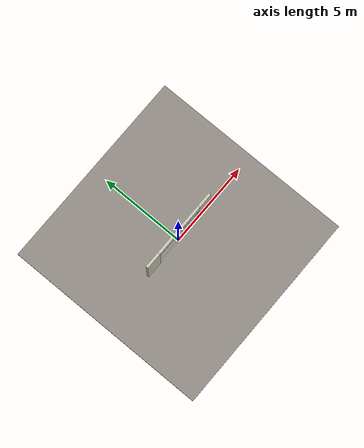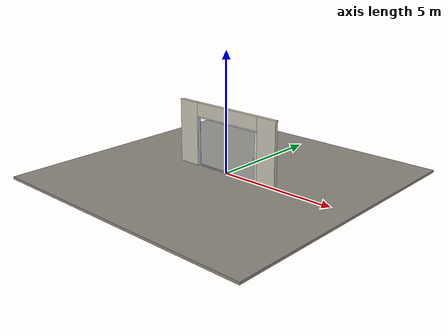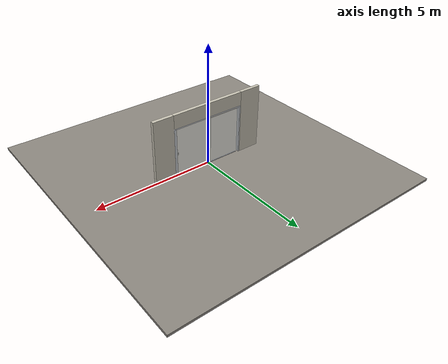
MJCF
<?xml version="1.0" ?>
<mujoco model="db0125_sliding_single_simple">
  <compiler angle="radian" meshdir="../../hardware" texturedir="../../textures" autolimits="true" inertiafromgeom="false"/>
  <option timestep="0.002" integrator="implicitfast" cone="elliptic" impratio="10" noslip_iterations="3">
    <flag multiccd="enable"/>
  </option>
  <size memory="16M"/>
  <default>
    <geom condim="4" solref="0.005 1" solimp="0.95 0.99 0.001"/>
    <joint solreflimit="0.005 1" solimplimit="0.95 0.99 0.001"/>
    <tendon solreflimit="0.005 1"/>
    <equality solref="0.002 1"/>
  </default>
  <visual>
    <headlight ambient="0.4 0.4 0.4" diffuse="0.7 0.7 0.7" specular="0.2 0.2 0.2"/>
    <quality shadowsize="4096"/>
    <map znear="0.01" zfar="60"/>
  </visual>
  <asset>
    <material name="mat_floor" rgba="0.55 0.53 0.5 1" specular="0.2" shininess="0.15" reflectance="0"/>
    <material name="mat_wall" rgba="0.78 0.76 0.7 1" specular="0.2" shininess="0.1" reflectance="0"/>
    <material name="mat_frame" rgba="0.8 0.81 0.83 1" specular="0.8" shininess="0.6" reflectance="0.4"/>
    <material name="mat_track" rgba="0.8 0.81 0.83 1" specular="0.8" shininess="0.6" reflectance="0.4"/>
    <material name="mat_fixed_glass" rgba="0.85 0.92 0.95 0.25" specular="0.2" shininess="0.95" reflectance="0.1"/>
    <material name="mat_leaf" rgba="0.85 0.92 0.95 0.25" specular="0.2" shininess="0.95" reflectance="0.1"/>
    <material name="mat_glass_leaf" rgba="0.85 0.92 0.95 0.25" specular="0.2" shininess="0.95" reflectance="0.1"/>
    <material name="mat_patch" rgba="0.75 0.76 0.77 1" specular="0.8" shininess="0.65" reflectance="0.4"/>
    <material name="mat_roller" rgba="0.65 0.66 0.68 1" specular="0.74" shininess="0.5" reflectance="0.36"/>
    <material name="mat_op_nickel_satin" rgba="0.72 0.7 0.66 1" specular="0.8" shininess="0.65" reflectance="0.4"/>
    <material name="mat_hook" rgba="0.75 0.76 0.77 1" specular="0.8" shininess="0.65" reflectance="0.4"/>
    <texture name="skybox" type="skybox" builtin="gradient" rgb1="0.6 0.7 0.85" rgb2="0.9 0.92 0.95" width="256" height="256"/>
  </asset>
  <worldbody>
    <light name="sun" pos="1.5 -2.5 4" dir="-0.3 0.5 -0.8" directional="true" diffuse="0.8 0.8 0.8" specular="0.3 0.3 0.3" castshadow="true"/>
    <light name="fill" pos="-1.5 2.5 3" dir="0.3 -0.5 -0.7" directional="true" diffuse="0.35 0.35 0.4" castshadow="false"/>
    <camera name="robot_view" pos="0 -3.45625 2.00625" xyaxes="1 0 0 0 0.26963 0.962964" fovy="52"/>
    <camera name="far_view" pos="0 3.45625 2.00625" xyaxes="-1 0 0 0 -0.26963 0.962964" fovy="52"/>
    <camera name="iso" pos="2.62675 -2.90325 2.55925" xyaxes="0.741536 0.670913 0 -0.242917 0.268487 0.932151" fovy="46"/>
    <camera name="detail_handle" pos="1.595 -0.8225 1.23" xyaxes="0.97561 0.219512 0 -0.070934 0.315262 0.94635" fovy="38"/>
    <geom name="floor" type="box" size="6 6 0.05" pos="0 0 -0.05" material="mat_floor" group="0" contype="1" conaffinity="1" friction="0.8 0.005 0.0001" density="2400"/>
    <geom name="wall_left" type="box" size="0.4725 0.0725 1.35" pos="-2.0275 0 1.35" material="mat_wall" group="0" contype="1" conaffinity="1" friction="0.6 0.005 0.0001" density="800"/>
    <geom name="wall_right" type="box" size="0.4425 0.0725 1.35" pos="2.0575 0 1.35" material="mat_wall" group="0" contype="1" conaffinity="1" friction="0.6 0.005 0.0001" density="800"/>
    <geom name="wall_header" type="box" size="1.585 0.0725 0.289" pos="0.03 0 2.411" material="mat_wall" group="0" contype="1" conaffinity="1" friction="0.6 0.005 0.0001" density="800"/>
    <geom name="jamb_l" type="box" size="0.0225 0.0725 1.0385" pos="-1.5325 0 1.0385" material="mat_frame" group="0" contype="1" conaffinity="1" friction="0.6 0.005 0.0001" density="300"/>
    <geom name="jamb_head" type="box" size="1.555 0.0725 0.0225" pos="0 0 2.0995" material="mat_frame" group="0" contype="1" conaffinity="1" friction="0.6 0.005 0.0001" density="300"/>
    <geom name="fixed_panel_glass" type="box" size="0.735 0.003 0.9885" pos="-0.755 0.04 1.0385" material="mat_fixed_glass" group="0" contype="1" conaffinity="1" friction="0.6 0.005 0.0001" density="2500"/>
    <geom name="fixed_panel_stile" type="box" size="0.03 0.012 1.0385" pos="-0.03 0.0475 1.0385" material="mat_frame" group="0" contype="1" conaffinity="1" friction="0.6 0.005 0.0001" density="1400"/>
    <geom name="bottom_rail" type="box" size="1.49 0.02 0.012" pos="0.065 0 0.012" material="mat_track" group="0" contype="1" conaffinity="1" friction="0.6 0.005 0.0001" density="2700"/>
    <geom name="jamb_latch_0" type="box" size="0.0525 0.0725 1.0385" pos="1.5625 0 1.0385" material="mat_frame" group="0" contype="1" conaffinity="1" friction="0.6 0.005 0.0001" density="300"/>
    <site name="approach_point" pos="0 -1.5 0" quat="1 0 0 0" size="0.05" rgba="0.2 0.9 0.2 0.5" group="4"/>
    <site name="goal_point" pos="0 1.5 0" quat="1 0 0 0" size="0.05" rgba="0.2 0.9 0.2 0.5" group="4"/>
    <site name="door_plane_center" pos="0 0 1.0385" quat="1 0 0 0" size="0.02" rgba="0.2 0.9 0.2 0.5" group="4"/>
    <body name="leaf" pos="0.755 0 0">
      <inertial pos="0.000005 -0.000001 1.044486" mass="213.491776" quat="0.500031 -0.500033 -0.499967 -0.499969" diaginertia="40.131052565 73.706366097 113.765453078"/>
      <joint name="leaf_slide" type="slide" axis="-1 0 0" limited="true" range="0 1.38" damping="12.674589" frictionloss="502.47339" armature="0.5"/>
      <geom name="leaf_glass" type="box" size="0.75 0.0225 1.016" pos="0 0 1.046" material="mat_glass_leaf" group="0" contype="1" conaffinity="1" friction="0.4 0.005 0.0001" density="1"/>
      <geom name="leaf_roller_0" type="cylinder" size="0.015 0.008" pos="-0.635 0 0.039" quat="0.707107 -0.707107 0 0" material="mat_roller" group="1" contype="0" conaffinity="0" density="7850"/>
      <geom name="leaf_roller_1" type="cylinder" size="0.015 0.008" pos="0.605 0 0.039" quat="0.707107 -0.707107 0 0" material="mat_roller" group="1" contype="0" conaffinity="0" density="7850"/>
      <geom name="leaf_pull_n" type="box" size="0.025 0.0005 0.05" pos="0.66 -0.023 0.95" material="mat_op_nickel_satin" group="1" contype="0" conaffinity="0" density="1000"/>
      <site name="leaf_pull_grip_n" pos="0.66 -0.0225 0.95" quat="1 0 0 0" size="0.012" rgba="0.2 0.9 0.2 0.5" group="4"/>
      <site name="leaf_edge_mid" pos="0.75 0 1.046" quat="1 0 0 0" size="0.02" rgba="0.2 0.9 0.2 0.5" group="4"/>
    </body>
  </worldbody>
  <sensor>
    <jointpos name="leaf_slide_pos" joint="leaf_slide"/>
    <jointvel name="leaf_slide_vel" joint="leaf_slide"/>
  </sensor>
</mujoco>
